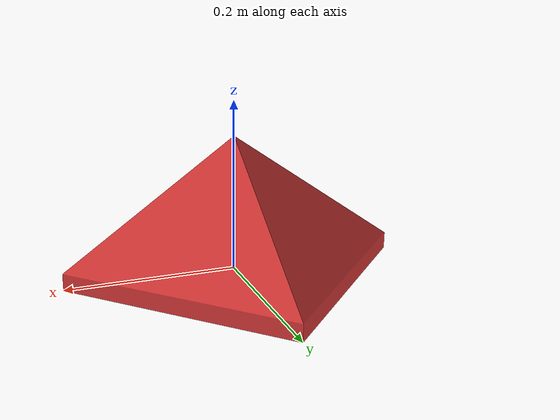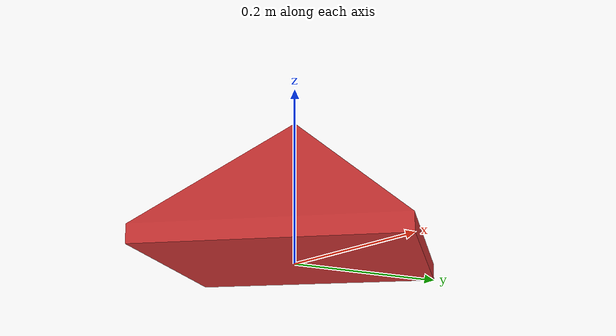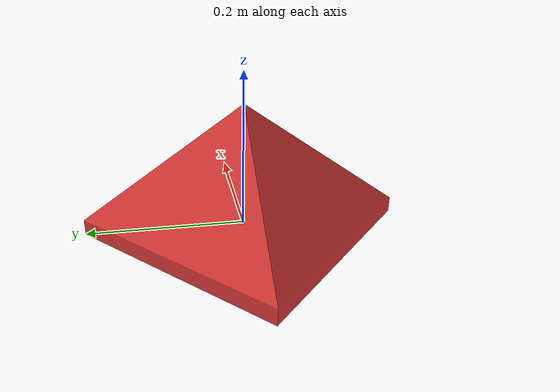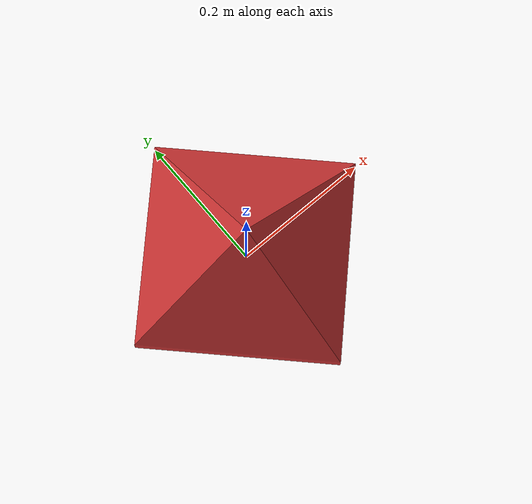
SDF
<?xml version="1.0"?>
<sdf version="1.7">
  <model name="hat_variant">
    <link name="hat_variant_link">
      <inertial>
        <mass>5.0</mass>
        <inertia>
          <ixx>0.66</ixx>
          <iyy>0.66</iyy>
          <izz>0.80</izz>
          <ixy>0.0</ixy>
          <ixz>0.0</ixz>
          <iyz>0.0</iyz>
        </inertia>
      </inertial>
      <visual name="hat_variant_visual">
        <geometry>
          <mesh>
            <uri>hat.obj</uri>
            <scale>0.2 0.2 0.2</scale>
          </mesh>
        </geometry>
        <material>
          <diffuse>0.8 0.2 0.2 1</diffuse>
          <ambient>0.3 0.1 0.1 1</ambient>
        </material>
      </visual>
    </link>
  </model>
</sdf>
